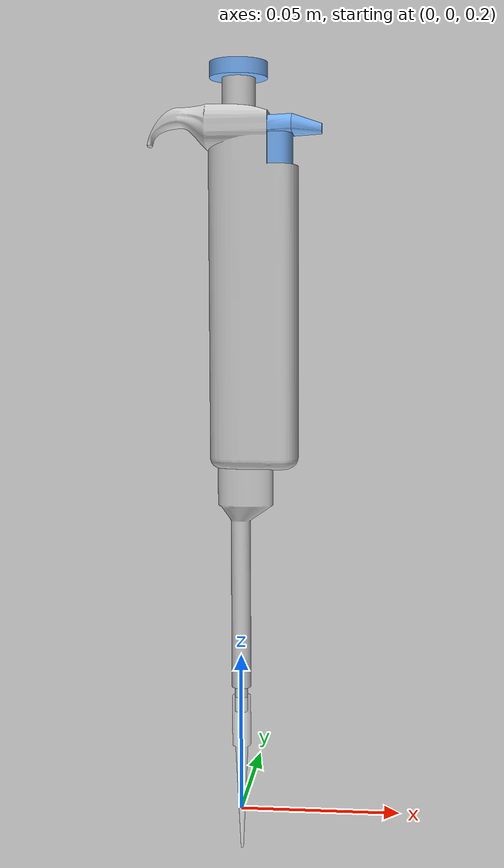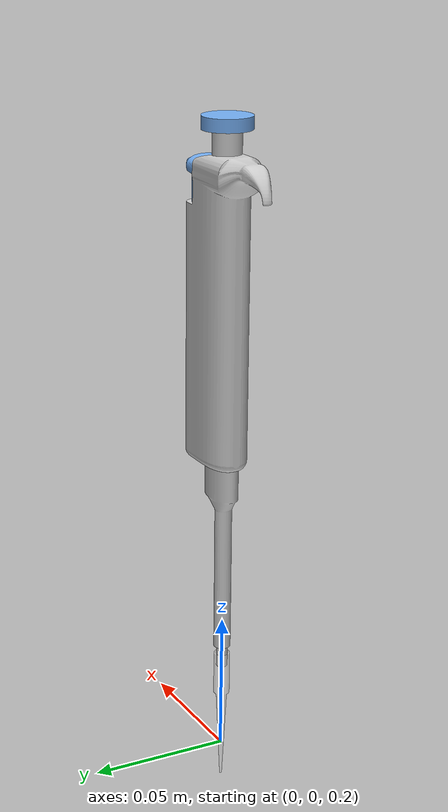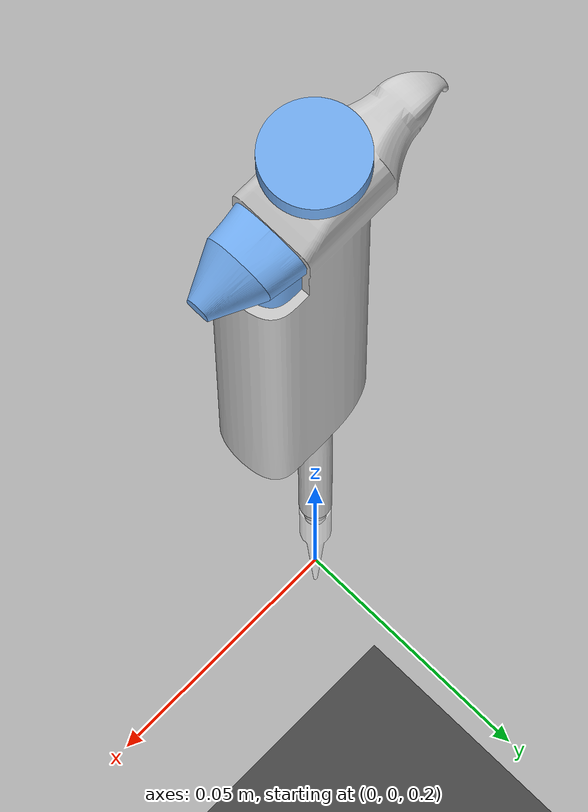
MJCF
<mujoco model="ejectable_pipette_tip_demo">
  <compiler angle="radian" autolimits="true" meshdir="/data/tianang/projects/AutoBio/autobio/assets/" />
  <option timestep="0.002" integrator="implicitfast" cone="elliptic" gravity="0 0 -9.81" />

  <visual>
    <headlight diffuse="0.6 0.6 0.6" ambient="0.35 0.35 0.35" specular="0.1 0.1 0.1" />
    <global azimuth="135" elevation="-22" offwidth="960" offheight="720" />
  </visual>

  <asset>
    <texture name="grid" type="2d" builtin="checker" width="512" height="512" rgb1="0.24 0.24 0.24" rgb2="0.31 0.31 0.31" />
    <material name="floor_grid" texture="grid" texrepeat="4 4" reflectance="0.08" />

    <mesh name="pipette_connector_visual" file="tool/pipette/connector_visual.obj" scale="0.1 0.1 0.1" />
    <mesh name="pipette_knob_visual" file="tool/pipette/knob_visual.obj" scale="0.1 0.1 0.1" />
    <mesh name="pipette_tube_visual" file="tool/pipette/tube_visual.obj" scale="0.1 0.1 0.1" />
    <mesh name="pipette_tube_collision_0" file="tool/pipette/tube_collision_0.obj" scale="0.1 0.1 0.1" />
    <mesh name="pipette_tube_collision_1" file="tool/pipette/tube_collision_1.obj" scale="0.1 0.1 0.1" />
    <mesh name="pipette_pusher_right1_visual" file="tool/pipette/pusher_right1_visual.obj" scale="0.1 0.1 0.1" />
    <mesh name="pipette_pusher_right1_collision_0" file="tool/pipette/pusher_right1_collision_0.obj" scale="0.1 0.1 0.1" />
    <mesh name="pipette_pusher_right2_visual" file="tool/pipette/pusher_right2_visual.obj" scale="0.1 0.1 0.1" />
    <mesh name="pipette_pusher_right2_collision_0" file="tool/pipette/pusher_right2_collision_0.obj" scale="0.1 0.1 0.1" />
    <mesh name="pipette_body_visual" file="tool/pipette/body_visual.obj" scale="0.1 0.1 0.1" />
    <mesh name="pipette_body_collision_0" file="tool/pipette/body_collision_0.obj" scale="0.1 0.1 0.1" />
    <mesh name="pipette_body_collision_1" file="tool/pipette/body_collision_1.obj" scale="0.1 0.1 0.1" />
    <mesh name="pipette_body_collision_2" file="tool/pipette/body_collision_2.obj" scale="0.1 0.1 0.1" />
    <mesh name="pipette_body_collision_3" file="tool/pipette/body_collision_3.obj" scale="0.1 0.1 0.1" />
    <mesh name="pipette_pusher_mid_visual" file="tool/pipette/pusher_mid_visual.obj" scale="0.1 0.1 0.1" />
    <mesh name="pipette_pusher_right3_visual" file="tool/pipette/pusher_right3_visual.obj" scale="0.1 0.1 0.1" />
    <mesh name="pipette_pusher_right3_collision_0" file="tool/pipette/pusher_right3_collision_0.obj" scale="0.1 0.1 0.1" />
    <mesh name="pipette_pusher_right3_collision_1" file="tool/pipette/pusher_right3_collision_1.obj" scale="0.1 0.1 0.1" />
    <mesh name="pipette_tip_visual" file="container/tip_200ul_vis/visual.obj" scale="0.001 0.001 0.001" />
    <mesh name="pipette_tip_collision_0" file="container/tip_200ul_col/tip_collision_0.obj" scale="0.001 0.001 0.001" />

    <material name="pipette_plastic" rgba="0.8 0.8 0.8 1" />
    <material name="pipette_button" rgba="0.45 0.68 0.95 1" />
    <material name="tip_clear" rgba="1 1 1 0.5" />
    <material name="release_marker" rgba="1 0.25 0.15 1" />
  </asset>

  <worldbody>
    <light name="key" pos="0.25 -0.55 0.7" dir="-0.3 0.7 -1" diffuse="0.8 0.8 0.8" />
    <geom name="floor" type="plane" size="0.8 0.8 0.02" material="floor_grid" />
    <camera name="demo_camera" pos="0.28 -0.46 0.24" xyaxes="0.85 0.53 0 -0.15 0.24 0.96" />

    <body name="pipette" pos="0 0 0.24" quat="1 0 0 0">
      <geom type="mesh" contype="0" conaffinity="0" group="2" mesh="pipette_body_visual" material="pipette_plastic" />
      <geom type="mesh" group="3" mesh="pipette_body_collision_0" />
      <geom type="mesh" group="3" mesh="pipette_body_collision_1" />
      <geom type="mesh" group="3" mesh="pipette_body_collision_2" />
      <geom type="mesh" group="3" mesh="pipette_body_collision_3" />
      <geom type="mesh" contype="0" conaffinity="0" group="2" mesh="pipette_tube_visual" material="pipette_plastic" />
      <geom type="mesh" group="3" mesh="pipette_tube_collision_0" />
      <geom type="mesh" group="3" mesh="pipette_tube_collision_1" />
      <geom name="connector_visual" type="mesh" contype="0" conaffinity="0" group="2" mesh="pipette_connector_visual" material="pipette_plastic" />
      <geom name="connector_collision" size="0.00199955 0.004" pos="0 0 -0.004" type="cylinder" conaffinity="5" group="3" />
      <site name="tip_socket_site" pos="0 0 -0.003" size="0.002" rgba="1 0.25 0.15 1" group="5" />

      <body name="pipette_ejector">
        <joint name="pipette_ejector" pos="0 0 0" axis="0 0 1" type="slide" springref="0.006333333333" stiffness="315.789473684" limited="true" range="-0.0095 0" damping="8" />
        <geom type="mesh" contype="0" conaffinity="0" group="2" mesh="pipette_pusher_right1_visual" material="pipette_button" />
        <geom type="mesh" group="3" mesh="pipette_pusher_right1_collision_0" />
        <geom type="mesh" contype="0" conaffinity="0" group="2" mesh="pipette_pusher_right2_visual" material="pipette_button" />
        <geom type="mesh" group="3" mesh="pipette_pusher_right2_collision_0" />
        <geom type="mesh" contype="0" conaffinity="0" group="2" mesh="pipette_pusher_right3_visual" material="pipette_button" />
        <geom type="mesh" group="3" mesh="pipette_pusher_right3_collision_0" />
        <geom type="mesh" group="3" mesh="pipette_pusher_right3_collision_1" />
      </body>

      <body name="pipette_button">
        <joint name="pipette_button" pos="0 0 0" axis="0 0 1" type="slide" springref="0.04" stiffness="1" limited="true" range="-0.008 0" damping="1" />
        <geom type="mesh" contype="0" conaffinity="0" group="2" mesh="pipette_pusher_mid_visual" material="pipette_plastic" />
        <geom size="0.00502107 0.00485" pos="0 0 0.181306" type="cylinder" group="3" />
        <body name="pipette_knob">
          <joint name="knob" pos="0 0 0" axis="0 0 1" range="-1.5 1.5" damping="1" frictionloss="0.0001" />
          <geom type="mesh" contype="0" conaffinity="0" group="2" mesh="pipette_knob_visual" material="pipette_button" />
          <geom size="0.00869505 0.00225" pos="0 0 0.188406" type="cylinder" group="3" />
        </body>
      </body>
    </body>

    <body name="pipette_tip" pos="0 0 0.237" quat="1 0 0 0">
      <freejoint name="tip_free" />
      <geom type="mesh" contype="0" conaffinity="0" group="2" mesh="pipette_tip_visual" material="tip_clear" />
      <geom type="mesh" group="3" mesh="pipette_tip_collision_0" />
      <geom size="0.00287797 0.008" pos="0 0 -0.008" type="cylinder" conaffinity="3" group="3" />
      <site name="tip_site" pos="0 0 -0.05" quat="1 0 0 0" type="sphere" group="5" rgba="0.9 0.9 0.9 1" size="0.0008" />
    </body>
  </worldbody>

  <contact>
    <exclude body1="pipette" body2="pipette_button" />
    <exclude body1="pipette" body2="pipette_knob" />
    <exclude body1="pipette" body2="pipette_ejector" />
    <exclude body1="pipette" body2="pipette_tip" />
  </contact>

  <equality>
    <weld name="tip_lock" body1="pipette" body2="pipette_tip" relpose="0 0 -0.003 1 0 0 0" solref="0.002 1" solimp="0.99 0.99 0.001" />
  </equality>

  <actuator>
    <position name="pipette_ejector_position" joint="pipette_ejector" ctrlrange="-0.0095 0" kp="5000" kv="45" forcerange="-12 12" />
  </actuator>
</mujoco>
